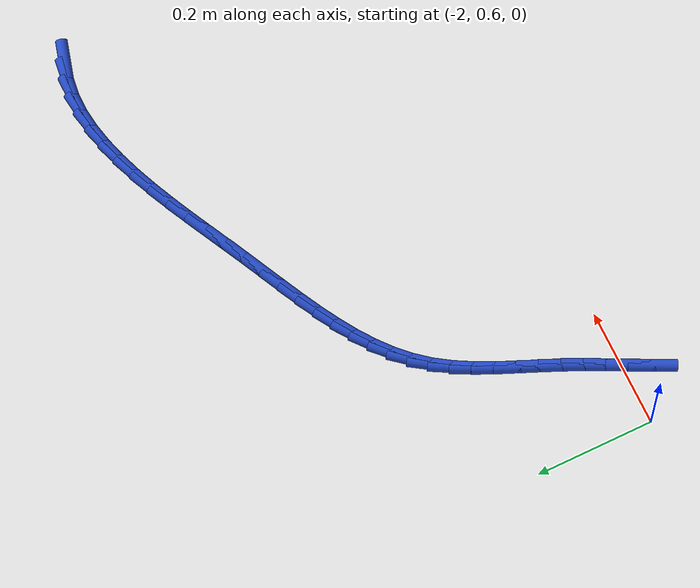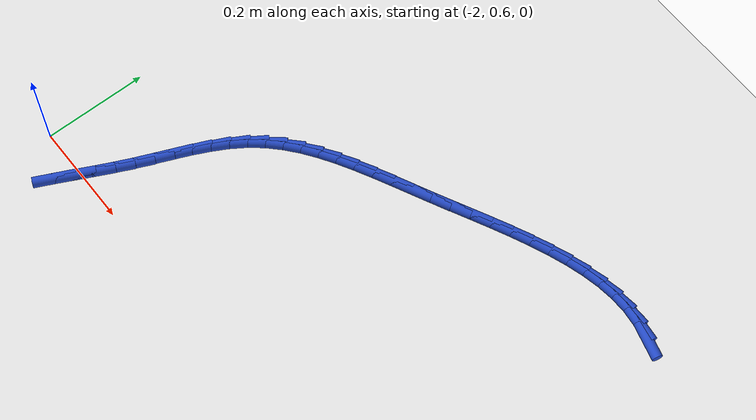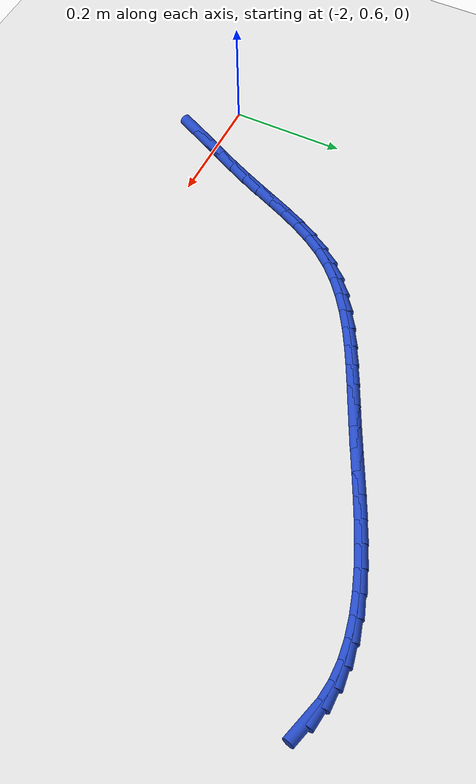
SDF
<sdf version="1.6">
 <world name="default">
  <model name="ground_plane">
   <static>1</static>
   <link name="link">
    <collision name="collision">
     <geometry><plane><normal>0 0 1</normal><size>100 100</size></plane></geometry>
     <surface><friction><ode><mu>100</mu><mu2>50</mu2></ode></friction></surface>
    </collision>
    <visual name="visual">
     <cast_shadows>0</cast_shadows>
     <geometry><plane><normal>0 0 1</normal><size>100 100</size></plane></geometry>
     <material>
      <script><uri>file://media/materials/scripts/gazebo.material</uri><name>Gazebo/WhiteGlow</name></script>
     </material>
    </visual>
   </link>
  </model>
  <model name="line">
   <link name="link_48">
    <pose>-1.0388203383897205 1.1869995564261926 0.01 0 1.57 -0.2704729338988285</pose>
    <collision name="collision">
     <geometry><cylinder><radius>0.01</radius><length>0.08</length></cylinder></geometry>
    </collision>
    <visual name="visual">
     <material>
      <script><name>Gazebo/Blue</name><uri>file://media/materials/scripts/gazebo.material</uri></script>
     </material>
     <geometry><cylinder><radius>0.01</radius><length>0.08</length></cylinder></geometry>
    </visual>
   </link>
   <link name="link_49">
    <pose>-1.0685804066658937 1.1952510520163342 0.01 0 1.57 -0.12034381612702377</pose>
    <collision name="collision">
     <geometry><cylinder><radius>0.01</radius><length>0.08</length></cylinder></geometry>
    </collision>
    <visual name="visual">
     <material>
      <script><name>Gazebo/Blue</name><uri>file://media/materials/scripts/gazebo.material</uri></script>
     </material>
     <geometry><cylinder><radius>0.01</radius><length>0.08</length></cylinder></geometry>
    </visual>
   </link>
   <link name="link_50">
    <pose>-1.0993666162380464 1.1989739718990957 0.01 0 1.57 0.011758414931012992</pose>
    <collision name="collision">
     <geometry><cylinder><radius>0.01</radius><length>0.08</length></cylinder></geometry>
    </collision>
    <visual name="visual">
     <material>
      <script><name>Gazebo/Blue</name><uri>file://media/materials/scripts/gazebo.material</uri></script>
     </material>
     <geometry><cylinder><radius>0.01</radius><length>0.08</length></cylinder></geometry>
    </visual>
   </link>
   <link name="link_51">
    <pose>-1.1310670227326935 1.1986012081864146 0.01 0 1.57 0.12351198069109004</pose>
    <collision name="collision">
     <geometry><cylinder><radius>0.01</radius><length>0.08</length></cylinder></geometry>
    </collision>
    <visual name="visual">
     <material>
      <script><name>Gazebo/Blue</name><uri>file://media/materials/scripts/gazebo.material</uri></script>
     </material>
     <geometry><cylinder><radius>0.01</radius><length>0.08</length></cylinder></geometry>
    </visual>
   </link>
   <link name="link_52">
    <pose>-1.163569511467243 1.1945662223431561 0.01 0 1.57 0.21544098257447505</pose>
    <collision name="collision">
     <geometry><cylinder><radius>0.01</radius><length>0.08</length></cylinder></geometry>
    </collision>
    <visual name="visual">
     <material>
      <script><name>Gazebo/Blue</name><uri>file://media/materials/scripts/gazebo.material</uri></script>
     </material>
     <geometry><cylinder><radius>0.01</radius><length>0.08</length></cylinder></geometry>
    </visual>
   </link>
   <link name="link_53">
    <pose>-1.196761967759104 1.187302475834186 0.01 0 1.57 0.2894983595741678</pose>
    <collision name="collision">
     <geometry><cylinder><radius>0.01</radius><length>0.08</length></cylinder></geometry>
    </collision>
    <visual name="visual">
     <material>
      <script><name>Gazebo/Blue</name><uri>file://media/materials/scripts/gazebo.material</uri></script>
     </material>
     <geometry><cylinder><radius>0.01</radius><length>0.08</length></cylinder></geometry>
    </visual>
   </link>
   <link name="link_54">
    <pose>-1.2305322769256848 1.1772434301243684 0.01 0 1.57 0.3480332926107759</pose>
    <collision name="collision">
     <geometry><cylinder><radius>0.01</radius><length>0.08</length></cylinder></geometry>
    </collision>
    <visual name="visual">
     <material>
      <script><name>Gazebo/Blue</name><uri>file://media/materials/scripts/gazebo.material</uri></script>
     </material>
     <geometry><cylinder><radius>0.01</radius><length>0.08</length></cylinder></geometry>
    </visual>
   </link>
   <link name="link_55">
    <pose>-1.2647683242843935 1.1648225466785695 0.01 0 1.57 0.39323565058645565</pose>
    <collision name="collision">
     <geometry><cylinder><radius>0.01</radius><length>0.08</length></cylinder></geometry>
    </collision>
    <visual name="visual">
     <material>
      <script><name>Gazebo/Blue</name><uri>file://media/materials/scripts/gazebo.material</uri></script>
     </material>
     <geometry><cylinder><radius>0.01</radius><length>0.08</length></cylinder></geometry>
    </visual>
   </link>
   <link name="link_56">
    <pose>-1.299357995152639 1.1504732869616547 0.01 0 1.57 0.42690870299146344</pose>
    <collision name="collision">
     <geometry><cylinder><radius>0.01</radius><length>0.08</length></cylinder></geometry>
    </collision>
    <visual name="visual">
     <material>
      <script><name>Gazebo/Blue</name><uri>file://media/materials/scripts/gazebo.material</uri></script>
     </material>
     <geometry><cylinder><radius>0.01</radius><length>0.08</length></cylinder></geometry>
    </visual>
   </link>
   <link name="link_57">
    <pose>-1.3341891748478303 1.1346291124384889 0.01 0 1.57 0.4504114732110434</pose>
    <collision name="collision">
     <geometry><cylinder><radius>0.01</radius><length>0.08</length></cylinder></geometry>
    </collision>
    <visual name="visual">
     <material>
      <script><name>Gazebo/Blue</name><uri>file://media/materials/scripts/gazebo.material</uri></script>
     </material>
     <geometry><cylinder><radius>0.01</radius><length>0.08</length></cylinder></geometry>
    </visual>
   </link>
   <link name="link_58">
    <pose>-1.3691497486873747 1.1177234845739368 0.01 0 1.57 0.4646692896271354</pose>
    <collision name="collision">
     <geometry><cylinder><radius>0.01</radius><length>0.08</length></cylinder></geometry>
    </collision>
    <visual name="visual">
     <material>
      <script><name>Gazebo/Blue</name><uri>file://media/materials/scripts/gazebo.material</uri></script>
     </material>
     <geometry><cylinder><radius>0.01</radius><length>0.08</length></cylinder></geometry>
    </visual>
   </link>
   <link name="link_59">
    <pose>-1.404127601988682 1.1001898648328645 0.01 0 1.57 0.4701997474381013</pose>
    <collision name="collision">
     <geometry><cylinder><radius>0.01</radius><length>0.08</length></cylinder></geometry>
    </collision>
    <visual name="visual">
     <material>
      <script><name>Gazebo/Blue</name><uri>file://media/materials/scripts/gazebo.material</uri></script>
     </material>
     <geometry><cylinder><radius>0.01</radius><length>0.08</length></cylinder></geometry>
    </visual>
   </link>
   <link name="link_60">
    <pose>-1.4390106200691601 1.082461714680137 0.01 0 1.57 0.46712946160996177</pose>
    <collision name="collision">
     <geometry><cylinder><radius>0.01</radius><length>0.08</length></cylinder></geometry>
    </collision>
    <visual name="visual">
     <material>
      <script><name>Gazebo/Blue</name><uri>file://media/materials/scripts/gazebo.material</uri></script>
     </material>
     <geometry><cylinder><radius>0.01</radius><length>0.08</length></cylinder></geometry>
    </visual>
   </link>
   <link name="link_61">
    <pose>-1.473686688246218 1.0649724955806195 0.01 0 1.57 0.4578661687066375</pose>
    <collision name="collision">
     <geometry><cylinder><radius>0.01</radius><length>0.08</length></cylinder></geometry>
    </collision>
    <visual name="visual">
     <material>
      <script><name>Gazebo/Blue</name><uri>file://media/materials/scripts/gazebo.material</uri></script>
     </material>
     <geometry><cylinder><radius>0.01</radius><length>0.08</length></cylinder></geometry>
    </visual>
   </link>
   <link name="link_62">
    <pose>-1.5080267728773236 1.0480499096312894 0.01 0 1.57 0.45509881952222836</pose>
    <collision name="collision">
     <geometry><cylinder><radius>0.01</radius><length>0.08</length></cylinder></geometry>
    </collision>
    <visual name="visual">
     <material>
      <script><name>Gazebo/Blue</name><uri>file://media/materials/scripts/gazebo.material</uri></script>
     </material>
     <geometry><cylinder><radius>0.01</radius><length>0.08</length></cylinder></geometry>
    </visual>
   </link>
   <link name="link_63">
    <pose>-1.5418204156533917 1.0315126783951352 0.01 0 1.57 0.46316137950109987</pose>
    <collision name="collision">
     <geometry><cylinder><radius>0.01</radius><length>0.08</length></cylinder></geometry>
    </collision>
    <visual name="visual">
     <material>
      <script><name>Gazebo/Blue</name><uri>file://media/materials/scripts/gazebo.material</uri></script>
     </material>
     <geometry><cylinder><radius>0.01</radius><length>0.08</length></cylinder></geometry>
    </visual>
   </link>
   <link name="link_64">
    <pose>-1.5748326939917534 1.0150265987802374 0.01 0 1.57 0.48274278074040394</pose>
    <collision name="collision">
     <geometry><cylinder><radius>0.01</radius><length>0.08</length></cylinder></geometry>
    </collision>
    <visual name="visual">
     <material>
      <script><name>Gazebo/Blue</name><uri>file://media/materials/scripts/gazebo.material</uri></script>
     </material>
     <geometry><cylinder><radius>0.01</radius><length>0.08</length></cylinder></geometry>
    </visual>
   </link>
   <link name="link_65">
    <pose>-1.6068286805450016 0.9982574379106108 0.01 0 1.57 0.5146730862857423</pose>
    <collision name="collision">
     <geometry><cylinder><radius>0.01</radius><length>0.08</length></cylinder></geometry>
    </collision>
    <visual name="visual">
     <material>
      <script><name>Gazebo/Blue</name><uri>file://media/materials/scripts/gazebo.material</uri></script>
     </material>
     <geometry><cylinder><radius>0.01</radius><length>0.08</length></cylinder></geometry>
    </visual>
   </link>
   <link name="link_66">
    <pose>-1.6375734479657313 0.9808709629102708 0.01 0 1.57 0.5598612023097513</pose>
    <collision name="collision">
     <geometry><cylinder><radius>0.01</radius><length>0.08</length></cylinder></geometry>
    </collision>
    <visual name="visual">
     <material>
      <script><name>Gazebo/Blue</name><uri>file://media/materials/scripts/gazebo.material</uri></script>
     </material>
     <geometry><cylinder><radius>0.01</radius><length>0.08</length></cylinder></geometry>
    </visual>
   </link>
   <link name="link_67">
    <pose>-1.6668320689065363 0.9625329409032322 0.01 0 1.57 0.6191455249734222</pose>
    <collision name="collision">
     <geometry><cylinder><radius>0.01</radius><length>0.08</length></cylinder></geometry>
    </collision>
    <visual name="visual">
     <material>
      <script><name>Gazebo/Blue</name><uri>file://media/materials/scripts/gazebo.material</uri></script>
     </material>
     <geometry><cylinder><radius>0.01</radius><length>0.08</length></cylinder></geometry>
    </visual>
   </link>
   <link name="link_68">
    <pose>-1.6943696160200112 0.9429091390135101 0.01 0 1.57 0.6930254264934056</pose>
    <collision name="collision">
     <geometry><cylinder><radius>0.01</radius><length>0.08</length></cylinder></geometry>
    </collision>
    <visual name="visual">
     <material>
      <script><name>Gazebo/Blue</name><uri>file://media/materials/scripts/gazebo.material</uri></script>
     </material>
     <geometry><cylinder><radius>0.01</radius><length>0.08</length></cylinder></geometry>
    </visual>
   </link>
   <link name="link_69">
    <pose>-1.7199511619587493 0.9216653243651196 0.01 0 1.57 0.78126505538493</pose>
    <collision name="collision">
     <geometry><cylinder><radius>0.01</radius><length>0.08</length></cylinder></geometry>
    </collision>
    <visual name="visual">
     <material>
      <script><name>Gazebo/Blue</name><uri>file://media/materials/scripts/gazebo.material</uri></script>
     </material>
     <geometry><cylinder><radius>0.01</radius><length>0.08</length></cylinder></geometry>
    </visual>
   </link>
   <link name="link_70">
    <pose>-1.7433417793753452 0.8984672640820757 0.01 0 1.57 0.8824229732381923</pose>
    <collision name="collision">
     <geometry><cylinder><radius>0.01</radius><length>0.08</length></cylinder></geometry>
    </collision>
    <visual name="visual">
     <material>
      <script><name>Gazebo/Blue</name><uri>file://media/materials/scripts/gazebo.material</uri></script>
     </material>
     <geometry><cylinder><radius>0.01</radius><length>0.08</length></cylinder></geometry>
    </visual>
   </link>
   <link name="link_71">
    <pose>-1.7643068622910218 0.8729810577434927 0.01 0 1.57 0.9854298848311027</pose>
    <collision name="collision">
     <geometry><cylinder><radius>0.01</radius><length>0.08</length></cylinder></geometry>
    </collision>
    <visual name="visual">
     <material>
      <script><name>Gazebo/Blue</name><uri>file://media/materials/scripts/gazebo.material</uri></script>
     </material>
     <geometry><cylinder><radius>0.01</radius><length>0.08</length></cylinder></geometry>
    </visual>
   </link>
   <link name="link_72">
    <pose>-1.7828058153013253 0.845073508416027 0.01 0 1.57 1.0664717966283566</pose>
    <collision name="collision">
     <geometry><cylinder><radius>0.01</radius><length>0.08</length></cylinder></geometry>
    </collision>
    <visual name="visual">
     <material>
      <script><name>Gazebo/Blue</name><uri>file://media/materials/scripts/gazebo.material</uri></script>
     </material>
     <geometry><cylinder><radius>0.01</radius><length>0.08</length></cylinder></geometry>
    </visual>
   </link>
   <link name="link_73">
    <pose>-1.7993204863157415 0.8151518855585327 0.01 0 1.57 1.123047139026396</pose>
    <collision name="collision">
     <geometry><cylinder><radius>0.01</radius><length>0.08</length></cylinder></geometry>
    </collision>
    <visual name="visual">
     <material>
      <script><name>Gazebo/Blue</name><uri>file://media/materials/scripts/gazebo.material</uri></script>
     </material>
     <geometry><cylinder><radius>0.01</radius><length>0.08</length></cylinder></geometry>
    </visual>
   </link>
   <link name="link_74">
    <pose>-1.8144197731592322 0.7837135115647986 0.01 0 1.57 1.1570287606181862</pose>
    <collision name="collision">
     <geometry><cylinder><radius>0.01</radius><length>0.08</length></cylinder></geometry>
    </collision>
    <visual name="visual">
     <material>
      <script><name>Gazebo/Blue</name><uri>file://media/materials/scripts/gazebo.material</uri></script>
     </material>
     <geometry><cylinder><radius>0.01</radius><length>0.08</length></cylinder></geometry>
    </visual>
   </link>
   <link name="link_75">
    <pose>-1.8286725736567584 0.7512557088286127 0.01 0 1.57 1.1699855465790934</pose>
    <collision name="collision">
     <geometry><cylinder><radius>0.01</radius><length>0.08</length></cylinder></geometry>
    </collision>
    <visual name="visual">
     <material>
      <script><name>Gazebo/Blue</name><uri>file://media/materials/scripts/gazebo.material</uri></script>
     </material>
     <geometry><cylinder><radius>0.01</radius><length>0.08</length></cylinder></geometry>
    </visual>
   </link>
   <link name="link_76">
    <pose>-1.8426477856332817 0.7182757997437641 0.01 0 1.57 1.1627947293551688</pose>
    <collision name="collision">
     <geometry><cylinder><radius>0.01</radius><length>0.08</length></cylinder></geometry>
    </collision>
    <visual name="visual">
     <material>
      <script><name>Gazebo/Blue</name><uri>file://media/materials/scripts/gazebo.material</uri></script>
     </material>
     <geometry><cylinder><radius>0.01</radius><length>0.08</length></cylinder></geometry>
    </visual>
   </link>
   <link name="link_77">
    <pose>-1.856914306913763 0.6852711067040409 0.01 0 1.57 1.1388848295778249</pose>
    <collision name="collision">
     <geometry><cylinder><radius>0.01</radius><length>0.08</length></cylinder></geometry>
    </collision>
    <visual name="visual">
     <material>
      <script><name>Gazebo/Blue</name><uri>file://media/materials/scripts/gazebo.material</uri></script>
     </material>
     <geometry><cylinder><radius>0.01</radius><length>0.08</length></cylinder></geometry>
    </visual>
   </link>
   <link name="link_78">
    <pose>-1.87194029643303 0.6526722864763416 0.01 0 1.57 1.1180958443084672</pose>
    <collision name="collision">
     <geometry><cylinder><radius>0.01</radius><length>0.08</length></cylinder></geometry>
    </collision>
    <visual name="visual">
     <material>
      <script><name>Gazebo/Blue</name><uri>file://media/materials/scripts/gazebo.material</uri></script>
     </material>
     <geometry><cylinder><radius>0.01</radius><length>0.08</length></cylinder></geometry>
    </visual>
   </link>
   <link name="link_79">
    <pose>-1.8875851159511101 0.6205071142268895 0.01 0 1.57 1.1079449908210133</pose>
    <collision name="collision">
     <geometry><cylinder><radius>0.01</radius><length>0.08</length></cylinder></geometry>
    </collision>
    <visual name="visual">
     <material>
      <script><name>Gazebo/Blue</name><uri>file://media/materials/scripts/gazebo.material</uri></script>
     </material>
     <geometry><cylinder><radius>0.01</radius><length>0.08</length></cylinder></geometry>
    </visual>
   </link>
   <link name="link_80">
    <pose>-1.9034805865810305 0.588652786334957 0.01 0 1.57 1.1085575019673424</pose>
    <collision name="collision">
     <geometry><cylinder><radius>0.01</radius><length>0.08</length></cylinder></geometry>
    </collision>
    <visual name="visual">
     <material>
      <script><name>Gazebo/Blue</name><uri>file://media/materials/scripts/gazebo.material</uri></script>
     </material>
     <geometry><cylinder><radius>0.01</radius><length>0.08</length></cylinder></geometry>
    </visual>
   </link>
   <link name="link_81">
    <pose>-1.9192581355424398 0.5569862385143558 0.01 0 1.57 1.120138963124015</pose>
    <collision name="collision">
     <geometry><cylinder><radius>0.01</radius><length>0.08</length></cylinder></geometry>
    </collision>
    <visual name="visual">
     <material>
      <script><name>Gazebo/Blue</name><uri>file://media/materials/scripts/gazebo.material</uri></script>
     </material>
     <geometry><cylinder><radius>0.01</radius><length>0.08</length></cylinder></geometry>
    </visual>
   </link>
  </model>
 </world>
</sdf>
